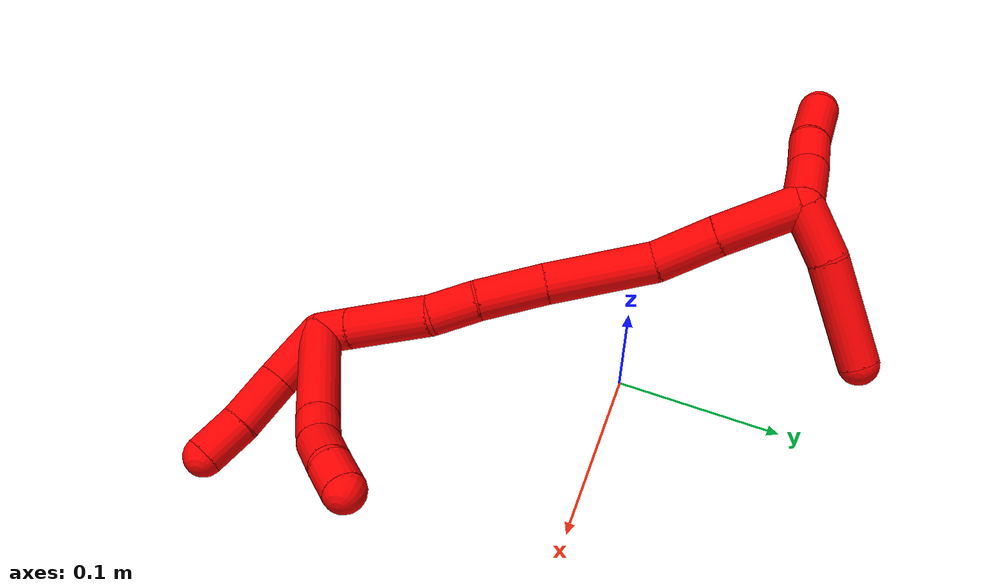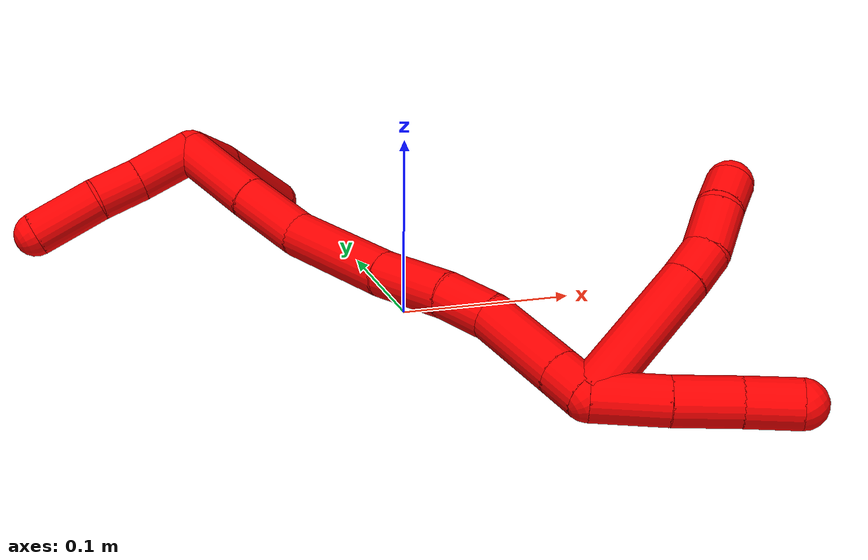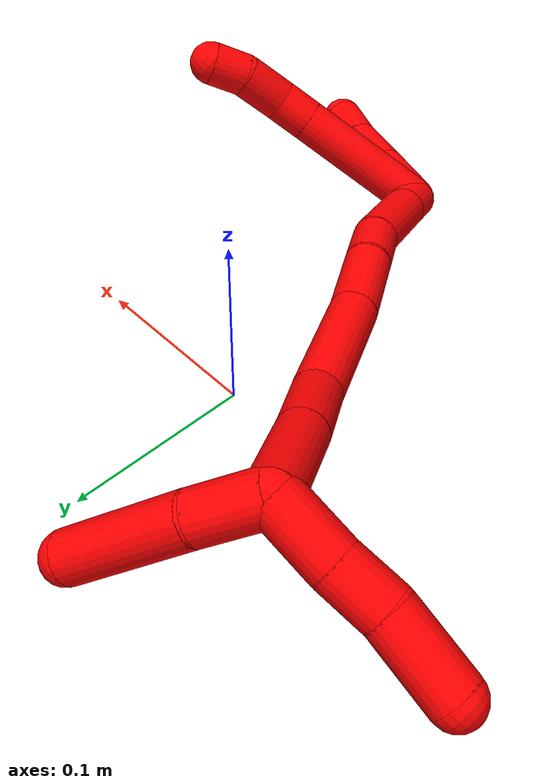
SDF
<sdf version="1.7">
 <world name="default">
  <model name="2">
   <static>0</static>
   <link name="2">
    <collision name="collision-cylinder-e_1_2_8">
     <pose>-0.010211 0.007007 0.038701 -0.179118 -0.254023 0.022934</pose>
     <geometry><cylinder><radius>0.0125</radius><length>0.081269</length></cylinder></geometry>
     <surface>
      <friction><ode><mu>1.16</mu><mu2>1.16</mu2><slip1>0</slip1><slip2>0</slip2></ode></friction>
      <contact><ode><kp>1e+06</kp><kd>1</kd><max_vel>0</max_vel><min_depth>0.001</min_depth></ode></contact>
     </surface>
    </collision>
    <visual name="visual-cylinder-e_1_2_8">
     <pose>-0.010211 0.007007 0.038701 -0.179118 -0.254023 0.022934</pose>
     <geometry><cylinder><radius>0.0125</radius><length>0.081269</length></cylinder></geometry>
     <material><ambient>1 0 0 1</ambient></material>
    </visual>
    <collision name="collision-cylinder-e_2_8_9">
     <pose>-0.023496 0.015931 0.087123 -0.19463 -0.30074 0.02958</pose>
     <geometry><cylinder><radius>0.0125</radius><length>0.020746</length></cylinder></geometry>
     <surface>
      <friction><ode><mu>1.16</mu><mu2>1.16</mu2><slip1>0</slip1><slip2>0</slip2></ode></friction>
      <contact><ode><kp>1e+06</kp><kd>1</kd><max_vel>0</max_vel><min_depth>0.001</min_depth></ode></contact>
     </surface>
    </collision>
    <visual name="visual-cylinder-e_2_8_9">
     <pose>-0.023496 0.015931 0.087123 -0.19463 -0.30074 0.02958</pose>
     <geometry><cylinder><radius>0.0125</radius><length>0.020746</length></cylinder></geometry>
     <material><ambient>1 0 0 1</ambient></material>
    </visual>
    <collision name="collision-cylinder-e_3_9_10">
     <pose>-0.033875 0.020971 0.107808 -0.277606 -0.569943 0.081804</pose>
     <geometry><cylinder><radius>0.0125</radius><length>0.027082</length></cylinder></geometry>
     <surface>
      <friction><ode><mu>1.16</mu><mu2>1.16</mu2><slip1>0</slip1><slip2>0</slip2></ode></friction>
      <contact><ode><kp>1e+06</kp><kd>1</kd><max_vel>0</max_vel><min_depth>0.001</min_depth></ode></contact>
     </surface>
    </collision>
    <visual name="visual-cylinder-e_3_9_10">
     <pose>-0.033875 0.020971 0.107808 -0.277606 -0.569943 0.081804</pose>
     <geometry><cylinder><radius>0.0125</radius><length>0.027082</length></cylinder></geometry>
     <material><ambient>1 0 0 1</ambient></material>
    </visual>
    <collision name="collision-cylinder-e_4_10_6">
     <pose>-0.045333 0.028934 0.127054 -0.528698 -0.408469 0.112012</pose>
     <geometry><cylinder><radius>0.0125</radius><length>0.020902</length></cylinder></geometry>
     <surface>
      <friction><ode><mu>1.16</mu><mu2>1.16</mu2><slip1>0</slip1><slip2>0</slip2></ode></friction>
      <contact><ode><kp>1e+06</kp><kd>1</kd><max_vel>0</max_vel><min_depth>0.001</min_depth></ode></contact>
     </surface>
    </collision>
    <visual name="visual-cylinder-e_4_10_6">
     <pose>-0.045333 0.028934 0.127054 -0.528698 -0.408469 0.112012</pose>
     <geometry><cylinder><radius>0.0125</radius><length>0.020902</length></cylinder></geometry>
     <material><ambient>1 0 0 1</ambient></material>
    </visual>
    <collision name="collision-cylinder-e_1_2_11">
     <pose>0.011241 -0.003033 0.015191 0.19705 0.627718 0.064146</pose>
     <geometry><cylinder><radius>0.0125</radius><length>0.038279</length></cylinder></geometry>
     <surface>
      <friction><ode><mu>1.16</mu><mu2>1.16</mu2><slip1>0</slip1><slip2>0</slip2></ode></friction>
      <contact><ode><kp>1e+06</kp><kd>1</kd><max_vel>0</max_vel><min_depth>0.001</min_depth></ode></contact>
     </surface>
    </collision>
    <visual name="visual-cylinder-e_1_2_11">
     <pose>0.011241 -0.003033 0.015191 0.19705 0.627718 0.064146</pose>
     <geometry><cylinder><radius>0.0125</radius><length>0.038279</length></cylinder></geometry>
     <material><ambient>1 0 0 1</ambient></material>
    </visual>
    <collision name="collision-cylinder-e_2_11_12">
     <pose>0.03178 -0.00846 0.04425 0.170962 0.583898 0.051495</pose>
     <geometry><cylinder><radius>0.0125</radius><length>0.033736</length></cylinder></geometry>
     <surface>
      <friction><ode><mu>1.16</mu><mu2>1.16</mu2><slip1>0</slip1><slip2>0</slip2></ode></friction>
      <contact><ode><kp>1e+06</kp><kd>1</kd><max_vel>0</max_vel><min_depth>0.001</min_depth></ode></contact>
     </surface>
    </collision>
    <visual name="visual-cylinder-e_2_11_12">
     <pose>0.03178 -0.00846 0.04425 0.170962 0.583898 0.051495</pose>
     <geometry><cylinder><radius>0.0125</radius><length>0.033736</length></cylinder></geometry>
     <material><ambient>1 0 0 1</ambient></material>
    </visual>
    <collision name="collision-cylinder-e_3_12_5">
     <pose>0.049031 -0.01435 0.069089 0.308505 0.604402 0.096871</pose>
     <geometry><cylinder><radius>0.0125</radius><length>0.027985</length></cylinder></geometry>
     <surface>
      <friction><ode><mu>1.16</mu><mu2>1.16</mu2><slip1>0</slip1><slip2>0</slip2></ode></friction>
      <contact><ode><kp>1e+06</kp><kd>1</kd><max_vel>0</max_vel><min_depth>0.001</min_depth></ode></contact>
     </surface>
    </collision>
    <visual name="visual-cylinder-e_3_12_5">
     <pose>0.049031 -0.01435 0.069089 0.308505 0.604402 0.096871</pose>
     <geometry><cylinder><radius>0.0125</radius><length>0.027985</length></cylinder></geometry>
     <material><ambient>1 0 0 1</ambient></material>
    </visual>
    <collision name="collision-cylinder-e_1_2_13">
     <pose>-0.00811 0.005865 -0.000915 -1.72556 -0.938977 1.06993</pose>
     <geometry><cylinder><radius>0.0125</radius><length>0.020099</length></cylinder></geometry>
     <surface>
      <friction><ode><mu>1.16</mu><mu2>1.16</mu2><slip1>0</slip1><slip2>0</slip2></ode></friction>
      <contact><ode><kp>1e+06</kp><kd>1</kd><max_vel>0</max_vel><min_depth>0.001</min_depth></ode></contact>
     </surface>
    </collision>
    <visual name="visual-cylinder-e_1_2_13">
     <pose>-0.00811 0.005865 -0.000915 -1.72556 -0.938977 1.06993</pose>
     <geometry><cylinder><radius>0.0125</radius><length>0.020099</length></cylinder></geometry>
     <material><ambient>1 0 0 1</ambient></material>
    </visual>
    <collision name="collision-cylinder-e_2_13_14">
     <pose>-0.036813 0.026699 -0.004241 -1.73046 -0.936111 1.07117</pose>
     <geometry><cylinder><radius>0.0125</radius><length>0.051148</length></cylinder></geometry>
     <surface>
      <friction><ode><mu>1.16</mu><mu2>1.16</mu2><slip1>0</slip1><slip2>0</slip2></ode></friction>
      <contact><ode><kp>1e+06</kp><kd>1</kd><max_vel>0</max_vel><min_depth>0.001</min_depth></ode></contact>
     </surface>
    </collision>
    <visual name="visual-cylinder-e_2_13_14">
     <pose>-0.036813 0.026699 -0.004241 -1.73046 -0.936111 1.07117</pose>
     <geometry><cylinder><radius>0.0125</radius><length>0.051148</length></cylinder></geometry>
     <material><ambient>1 0 0 1</ambient></material>
    </visual>
    <collision name="collision-cylinder-e_3_14_15">
     <pose>-0.068535 0.04959 -0.011306 -2.10212 -0.880703 1.3778</pose>
     <geometry><cylinder><radius>0.0125</radius><length>0.028862</length></cylinder></geometry>
     <surface>
      <friction><ode><mu>1.16</mu><mu2>1.16</mu2><slip1>0</slip1><slip2>0</slip2></ode></friction>
      <contact><ode><kp>1e+06</kp><kd>1</kd><max_vel>0</max_vel><min_depth>0.001</min_depth></ode></contact>
     </surface>
    </collision>
    <visual name="visual-cylinder-e_3_14_15">
     <pose>-0.068535 0.04959 -0.011306 -2.10212 -0.880703 1.3778</pose>
     <geometry><cylinder><radius>0.0125</radius><length>0.028862</length></cylinder></geometry>
     <material><ambient>1 0 0 1</ambient></material>
    </visual>
    <collision name="collision-cylinder-e_4_15_16">
     <pose>-0.093978 0.070754 -0.023628 -2.09556 -0.752009 1.20078</pose>
     <geometry><cylinder><radius>0.0125</radius><length>0.041907</length></cylinder></geometry>
     <surface>
      <friction><ode><mu>1.16</mu><mu2>1.16</mu2><slip1>0</slip1><slip2>0</slip2></ode></friction>
      <contact><ode><kp>1e+06</kp><kd>1</kd><max_vel>0</max_vel><min_depth>0.001</min_depth></ode></contact>
     </surface>
    </collision>
    <visual name="visual-cylinder-e_4_15_16">
     <pose>-0.093978 0.070754 -0.023628 -2.09556 -0.752009 1.20078</pose>
     <geometry><cylinder><radius>0.0125</radius><length>0.041907</length></cylinder></geometry>
     <material><ambient>1 0 0 1</ambient></material>
    </visual>
    <collision name="collision-cylinder-e_5_16_17">
     <pose>-0.132077 0.105125 -0.040507 -1.98198 -0.801147 1.14799</pose>
     <geometry><cylinder><radius>0.0125</radius><length>0.066242</length></cylinder></geometry>
     <surface>
      <friction><ode><mu>1.16</mu><mu2>1.16</mu2><slip1>0</slip1><slip2>0</slip2></ode></friction>
      <contact><ode><kp>1e+06</kp><kd>1</kd><max_vel>0</max_vel><min_depth>0.001</min_depth></ode></contact>
     </surface>
    </collision>
    <visual name="visual-cylinder-e_5_16_17">
     <pose>-0.132077 0.105125 -0.040507 -1.98198 -0.801147 1.14799</pose>
     <geometry><cylinder><radius>0.0125</radius><length>0.066242</length></cylinder></geometry>
     <material><ambient>1 0 0 1</ambient></material>
    </visual>
    <collision name="collision-cylinder-e_6_17_18">
     <pose>-0.17339 0.134585 -0.054449 -2.08711 -1.07051 1.58914</pose>
     <geometry><cylinder><radius>0.0125</radius><length>0.03995</length></cylinder></geometry>
     <surface>
      <friction><ode><mu>1.16</mu><mu2>1.16</mu2><slip1>0</slip1><slip2>0</slip2></ode></friction>
      <contact><ode><kp>1e+06</kp><kd>1</kd><max_vel>0</max_vel><min_depth>0.001</min_depth></ode></contact>
     </surface>
    </collision>
    <visual name="visual-cylinder-e_6_17_18">
     <pose>-0.17339 0.134585 -0.054449 -2.08711 -1.07051 1.58914</pose>
     <geometry><cylinder><radius>0.0125</radius><length>0.03995</length></cylinder></geometry>
     <material><ambient>1 0 0 1</ambient></material>
    </visual>
    <collision name="collision-cylinder-e_7_18_1">
     <pose>-0.213531 0.15446 -0.064277 -1.98665 -1.06187 1.46694</pose>
     <geometry><cylinder><radius>0.0125</radius><length>0.051792</length></cylinder></geometry>
     <surface>
      <friction><ode><mu>1.16</mu><mu2>1.16</mu2><slip1>0</slip1><slip2>0</slip2></ode></friction>
      <contact><ode><kp>1e+06</kp><kd>1</kd><max_vel>0</max_vel><min_depth>0.001</min_depth></ode></contact>
     </surface>
    </collision>
    <visual name="visual-cylinder-e_7_18_1">
     <pose>-0.213531 0.15446 -0.064277 -1.98665 -1.06187 1.46694</pose>
     <geometry><cylinder><radius>0.0125</radius><length>0.051792</length></cylinder></geometry>
     <material><ambient>1 0 0 1</ambient></material>
    </visual>
    <collision name="collision-cylinder-e_1_1_19">
     <pose>-0.236685 0.166477 -0.086709 -3.11416 -0.031092 1.69578</pose>
     <geometry><cylinder><radius>0.0125</radius><length>0.0347</length></cylinder></geometry>
     <surface>
      <friction><ode><mu>1.16</mu><mu2>1.16</mu2><slip1>0</slip1><slip2>0</slip2></ode></friction>
      <contact><ode><kp>1e+06</kp><kd>1</kd><max_vel>0</max_vel><min_depth>0.001</min_depth></ode></contact>
     </surface>
    </collision>
    <visual name="visual-cylinder-e_1_1_19">
     <pose>-0.236685 0.166477 -0.086709 -3.11416 -0.031092 1.69578</pose>
     <geometry><cylinder><radius>0.0125</radius><length>0.0347</length></cylinder></geometry>
     <material><ambient>1 0 0 1</ambient></material>
    </visual>
    <collision name="collision-cylinder-e_2_19_20">
     <pose>-0.238041 0.166026 -0.116963 3.06994 -0.062995 -1.44222</pose>
     <geometry><cylinder><radius>0.0125</radius><length>0.025955</length></cylinder></geometry>
     <surface>
      <friction><ode><mu>1.16</mu><mu2>1.16</mu2><slip1>0</slip1><slip2>0</slip2></ode></friction>
      <contact><ode><kp>1e+06</kp><kd>1</kd><max_vel>0</max_vel><min_depth>0.001</min_depth></ode></contact>
     </surface>
    </collision>
    <visual name="visual-cylinder-e_2_19_20">
     <pose>-0.238041 0.166026 -0.116963 3.06994 -0.062995 -1.44222</pose>
     <geometry><cylinder><radius>0.0125</radius><length>0.025955</length></cylinder></geometry>
     <material><ambient>1 0 0 1</ambient></material>
    </visual>
    <collision name="collision-cylinder-e_3_20_4">
     <pose>-0.239428 0.1672 -0.149433 -3.03451 -0.028946 0.527565</pose>
     <geometry><cylinder><radius>0.0125</radius><length>0.039345</length></cylinder></geometry>
     <surface>
      <friction><ode><mu>1.16</mu><mu2>1.16</mu2><slip1>0</slip1><slip2>0</slip2></ode></friction>
      <contact><ode><kp>1e+06</kp><kd>1</kd><max_vel>0</max_vel><min_depth>0.001</min_depth></ode></contact>
     </surface>
    </collision>
    <visual name="visual-cylinder-e_3_20_4">
     <pose>-0.239428 0.1672 -0.149433 -3.03451 -0.028946 0.527565</pose>
     <geometry><cylinder><radius>0.0125</radius><length>0.039345</length></cylinder></geometry>
     <material><ambient>1 0 0 1</ambient></material>
    </visual>
    <collision name="collision-cylinder-e_1_1_21">
     <pose>-0.231762 0.180939 -0.061259 -1.07314 0.25235 -0.150608</pose>
     <geometry><cylinder><radius>0.0125</radius><length>0.035111</length></cylinder></geometry>
     <surface>
      <friction><ode><mu>1.16</mu><mu2>1.16</mu2><slip1>0</slip1><slip2>0</slip2></ode></friction>
      <contact><ode><kp>1e+06</kp><kd>1</kd><max_vel>0</max_vel><min_depth>0.001</min_depth></ode></contact>
     </surface>
    </collision>
    <visual name="visual-cylinder-e_1_1_21">
     <pose>-0.231762 0.180939 -0.061259 -1.07314 0.25235 -0.150608</pose>
     <geometry><cylinder><radius>0.0125</radius><length>0.035111</length></cylinder></geometry>
     <material><ambient>1 0 0 1</ambient></material>
    </visual>
    <collision name="collision-cylinder-e_2_21_3">
     <pose>-0.214194 0.222387 -0.039878 -1.10682 0.418514 -0.260911</pose>
     <geometry><cylinder><radius>0.0125</radius><length>0.064889</length></cylinder></geometry>
     <surface>
      <friction><ode><mu>1.16</mu><mu2>1.16</mu2><slip1>0</slip1><slip2>0</slip2></ode></friction>
      <contact><ode><kp>1e+06</kp><kd>1</kd><max_vel>0</max_vel><min_depth>0.001</min_depth></ode></contact>
     </surface>
    </collision>
    <visual name="visual-cylinder-e_2_21_3">
     <pose>-0.214194 0.222387 -0.039878 -1.10682 0.418514 -0.260911</pose>
     <geometry><cylinder><radius>0.0125</radius><length>0.064889</length></cylinder></geometry>
     <material><ambient>1 0 0 1</ambient></material>
    </visual>
    <collision name="collision-sphere-3">
     <pose>-0.201008 0.248897 -0.026612 0 -0 0</pose>
     <geometry><sphere><radius>0.0125</radius></sphere></geometry>
     <surface>
      <friction><ode><mu>1.16</mu><mu2>1.16</mu2><slip1>0</slip1><slip2>0</slip2></ode></friction>
      <contact><ode><kp>1e+06</kp><kd>1</kd><max_vel>0</max_vel><min_depth>0.001</min_depth></ode></contact>
     </surface>
    </collision>
    <visual name="visual-sphere-3">
     <pose>-0.201008 0.248897 -0.026612 0 -0 0</pose>
     <geometry><sphere><radius>0.0125</radius></sphere></geometry>
     <material><ambient>1 0 0 1</ambient></material>
    </visual>
    <collision name="collision-sphere-21">
     <pose>-0.227379 0.195877 -0.053144 0 -0 0</pose>
     <geometry><sphere><radius>0.0125</radius></sphere></geometry>
     <surface>
      <friction><ode><mu>1.16</mu><mu2>1.16</mu2><slip1>0</slip1><slip2>0</slip2></ode></friction>
      <contact><ode><kp>1e+06</kp><kd>1</kd><max_vel>0</max_vel><min_depth>0.001</min_depth></ode></contact>
     </surface>
    </collision>
    <visual name="visual-sphere-21">
     <pose>-0.227379 0.195877 -0.053144 0 -0 0</pose>
     <geometry><sphere><radius>0.0125</radius></sphere></geometry>
     <material><ambient>1 0 0 1</ambient></material>
    </visual>
    <collision name="collision-sphere-4">
     <pose>-0.239997 0.169302 -0.168984 0 -0 0</pose>
     <geometry><sphere><radius>0.0125</radius></sphere></geometry>
     <surface>
      <friction><ode><mu>1.16</mu><mu2>1.16</mu2><slip1>0</slip1><slip2>0</slip2></ode></friction>
      <contact><ode><kp>1e+06</kp><kd>1</kd><max_vel>0</max_vel><min_depth>0.001</min_depth></ode></contact>
     </surface>
    </collision>
    <visual name="visual-sphere-4">
     <pose>-0.239997 0.169302 -0.168984 0 -0 0</pose>
     <geometry><sphere><radius>0.0125</radius></sphere></geometry>
     <material><ambient>1 0 0 1</ambient></material>
    </visual>
    <collision name="collision-sphere-20">
     <pose>-0.238858 0.165099 -0.129881 0 -0 0</pose>
     <geometry><sphere><radius>0.0125</radius></sphere></geometry>
     <surface>
      <friction><ode><mu>1.16</mu><mu2>1.16</mu2><slip1>0</slip1><slip2>0</slip2></ode></friction>
      <contact><ode><kp>1e+06</kp><kd>1</kd><max_vel>0</max_vel><min_depth>0.001</min_depth></ode></contact>
     </surface>
    </collision>
    <visual name="visual-sphere-20">
     <pose>-0.238858 0.165099 -0.129881 0 -0 0</pose>
     <geometry><sphere><radius>0.0125</radius></sphere></geometry>
     <material><ambient>1 0 0 1</ambient></material>
    </visual>
    <collision name="collision-sphere-11">
     <pose>0.022481 -0.006066 0.030382 0 -0 0</pose>
     <geometry><sphere><radius>0.0125</radius></sphere></geometry>
     <surface>
      <friction><ode><mu>1.16</mu><mu2>1.16</mu2><slip1>0</slip1><slip2>0</slip2></ode></friction>
      <contact><ode><kp>1e+06</kp><kd>1</kd><max_vel>0</max_vel><min_depth>0.001</min_depth></ode></contact>
     </surface>
    </collision>
    <visual name="visual-sphere-11">
     <pose>0.022481 -0.006066 0.030382 0 -0 0</pose>
     <geometry><sphere><radius>0.0125</radius></sphere></geometry>
     <material><ambient>1 0 0 1</ambient></material>
    </visual>
    <collision name="collision-sphere-6">
     <pose>-0.049484 0.033772 0.135336 0 -0 0</pose>
     <geometry><sphere><radius>0.0125</radius></sphere></geometry>
     <surface>
      <friction><ode><mu>1.16</mu><mu2>1.16</mu2><slip1>0</slip1><slip2>0</slip2></ode></friction>
      <contact><ode><kp>1e+06</kp><kd>1</kd><max_vel>0</max_vel><min_depth>0.001</min_depth></ode></contact>
     </surface>
    </collision>
    <visual name="visual-sphere-6">
     <pose>-0.049484 0.033772 0.135336 0 -0 0</pose>
     <geometry><sphere><radius>0.0125</radius></sphere></geometry>
     <material><ambient>1 0 0 1</ambient></material>
    </visual>
    <collision name="collision-sphere-10">
     <pose>-0.041182 0.024096 0.118772 0 -0 0</pose>
     <geometry><sphere><radius>0.0125</radius></sphere></geometry>
     <surface>
      <friction><ode><mu>1.16</mu><mu2>1.16</mu2><slip1>0</slip1><slip2>0</slip2></ode></friction>
      <contact><ode><kp>1e+06</kp><kd>1</kd><max_vel>0</max_vel><min_depth>0.001</min_depth></ode></contact>
     </surface>
    </collision>
    <visual name="visual-sphere-10">
     <pose>-0.041182 0.024096 0.118772 0 -0 0</pose>
     <geometry><sphere><radius>0.0125</radius></sphere></geometry>
     <material><ambient>1 0 0 1</ambient></material>
    </visual>
    <collision name="collision-sphere-9">
     <pose>-0.026569 0.017847 0.096844 0 -0 0</pose>
     <geometry><sphere><radius>0.0125</radius></sphere></geometry>
     <surface>
      <friction><ode><mu>1.16</mu><mu2>1.16</mu2><slip1>0</slip1><slip2>0</slip2></ode></friction>
      <contact><ode><kp>1e+06</kp><kd>1</kd><max_vel>0</max_vel><min_depth>0.001</min_depth></ode></contact>
     </surface>
    </collision>
    <visual name="visual-sphere-9">
     <pose>-0.026569 0.017847 0.096844 0 -0 0</pose>
     <geometry><sphere><radius>0.0125</radius></sphere></geometry>
     <material><ambient>1 0 0 1</ambient></material>
    </visual>
    <collision name="collision-sphere-2">
     <geometry><sphere><radius>0.0125</radius></sphere></geometry>
     <surface>
      <friction><ode><mu>1.16</mu><mu2>1.16</mu2><slip1>0</slip1><slip2>0</slip2></ode></friction>
      <contact><ode><kp>1e+06</kp><kd>1</kd><max_vel>0</max_vel><min_depth>0.001</min_depth></ode></contact>
     </surface>
    </collision>
    <visual name="visual-sphere-2">
     <geometry><sphere><radius>0.0125</radius></sphere></geometry>
     <material><ambient>1 0 0 1</ambient></material>
    </visual>
    <collision name="collision-sphere-19">
     <pose>-0.237224 0.166953 -0.104044 0 -0 0</pose>
     <geometry><sphere><radius>0.0125</radius></sphere></geometry>
     <surface>
      <friction><ode><mu>1.16</mu><mu2>1.16</mu2><slip1>0</slip1><slip2>0</slip2></ode></friction>
      <contact><ode><kp>1e+06</kp><kd>1</kd><max_vel>0</max_vel><min_depth>0.001</min_depth></ode></contact>
     </surface>
    </collision>
    <visual name="visual-sphere-19">
     <pose>-0.237224 0.166953 -0.104044 0 -0 0</pose>
     <geometry><sphere><radius>0.0125</radius></sphere></geometry>
     <material><ambient>1 0 0 1</ambient></material>
    </visual>
    <collision name="collision-sphere-8">
     <pose>-0.020423 0.014014 0.077402 0 -0 0</pose>
     <geometry><sphere><radius>0.0125</radius></sphere></geometry>
     <surface>
      <friction><ode><mu>1.16</mu><mu2>1.16</mu2><slip1>0</slip1><slip2>0</slip2></ode></friction>
      <contact><ode><kp>1e+06</kp><kd>1</kd><max_vel>0</max_vel><min_depth>0.001</min_depth></ode></contact>
     </surface>
    </collision>
    <visual name="visual-sphere-8">
     <pose>-0.020423 0.014014 0.077402 0 -0 0</pose>
     <geometry><sphere><radius>0.0125</radius></sphere></geometry>
     <material><ambient>1 0 0 1</ambient></material>
    </visual>
    <collision name="collision-sphere-12">
     <pose>0.041079 -0.010854 0.058118 0 -0 0</pose>
     <geometry><sphere><radius>0.0125</radius></sphere></geometry>
     <surface>
      <friction><ode><mu>1.16</mu><mu2>1.16</mu2><slip1>0</slip1><slip2>0</slip2></ode></friction>
      <contact><ode><kp>1e+06</kp><kd>1</kd><max_vel>0</max_vel><min_depth>0.001</min_depth></ode></contact>
     </surface>
    </collision>
    <visual name="visual-sphere-12">
     <pose>0.041079 -0.010854 0.058118 0 -0 0</pose>
     <geometry><sphere><radius>0.0125</radius></sphere></geometry>
     <material><ambient>1 0 0 1</ambient></material>
    </visual>
    <collision name="collision-sphere-5">
     <pose>0.056982 -0.017846 0.080059 0 -0 0</pose>
     <geometry><sphere><radius>0.0125</radius></sphere></geometry>
     <surface>
      <friction><ode><mu>1.16</mu><mu2>1.16</mu2><slip1>0</slip1><slip2>0</slip2></ode></friction>
      <contact><ode><kp>1e+06</kp><kd>1</kd><max_vel>0</max_vel><min_depth>0.001</min_depth></ode></contact>
     </surface>
    </collision>
    <visual name="visual-sphere-5">
     <pose>0.056982 -0.017846 0.080059 0 -0 0</pose>
     <geometry><sphere><radius>0.0125</radius></sphere></geometry>
     <material><ambient>1 0 0 1</ambient></material>
    </visual>
    <collision name="collision-sphere-13">
     <pose>-0.016219 0.011729 -0.00183 0 -0 0</pose>
     <geometry><sphere><radius>0.0125</radius></sphere></geometry>
     <surface>
      <friction><ode><mu>1.16</mu><mu2>1.16</mu2><slip1>0</slip1><slip2>0</slip2></ode></friction>
      <contact><ode><kp>1e+06</kp><kd>1</kd><max_vel>0</max_vel><min_depth>0.001</min_depth></ode></contact>
     </surface>
    </collision>
    <visual name="visual-sphere-13">
     <pose>-0.016219 0.011729 -0.00183 0 -0 0</pose>
     <geometry><sphere><radius>0.0125</radius></sphere></geometry>
     <material><ambient>1 0 0 1</ambient></material>
    </visual>
    <collision name="collision-sphere-14">
     <pose>-0.057406 0.04167 -0.006651 0 -0 0</pose>
     <geometry><sphere><radius>0.0125</radius></sphere></geometry>
     <surface>
      <friction><ode><mu>1.16</mu><mu2>1.16</mu2><slip1>0</slip1><slip2>0</slip2></ode></friction>
      <contact><ode><kp>1e+06</kp><kd>1</kd><max_vel>0</max_vel><min_depth>0.001</min_depth></ode></contact>
     </surface>
    </collision>
    <visual name="visual-sphere-14">
     <pose>-0.057406 0.04167 -0.006651 0 -0 0</pose>
     <geometry><sphere><radius>0.0125</radius></sphere></geometry>
     <material><ambient>1 0 0 1</ambient></material>
    </visual>
    <collision name="collision-sphere-15">
     <pose>-0.079664 0.057511 -0.015961 0 -0 0</pose>
     <geometry><sphere><radius>0.0125</radius></sphere></geometry>
     <surface>
      <friction><ode><mu>1.16</mu><mu2>1.16</mu2><slip1>0</slip1><slip2>0</slip2></ode></friction>
      <contact><ode><kp>1e+06</kp><kd>1</kd><max_vel>0</max_vel><min_depth>0.001</min_depth></ode></contact>
     </surface>
    </collision>
    <visual name="visual-sphere-15">
     <pose>-0.079664 0.057511 -0.015961 0 -0 0</pose>
     <geometry><sphere><radius>0.0125</radius></sphere></geometry>
     <material><ambient>1 0 0 1</ambient></material>
    </visual>
    <collision name="collision-sphere-16">
     <pose>-0.108291 0.083998 -0.031295 0 -0 0</pose>
     <geometry><sphere><radius>0.0125</radius></sphere></geometry>
     <surface>
      <friction><ode><mu>1.16</mu><mu2>1.16</mu2><slip1>0</slip1><slip2>0</slip2></ode></friction>
      <contact><ode><kp>1e+06</kp><kd>1</kd><max_vel>0</max_vel><min_depth>0.001</min_depth></ode></contact>
     </surface>
    </collision>
    <visual name="visual-sphere-16">
     <pose>-0.108291 0.083998 -0.031295 0 -0 0</pose>
     <geometry><sphere><radius>0.0125</radius></sphere></geometry>
     <material><ambient>1 0 0 1</ambient></material>
    </visual>
    <collision name="collision-sphere-17">
     <pose>-0.155863 0.126253 -0.049719 0 -0 0</pose>
     <geometry><sphere><radius>0.0125</radius></sphere></geometry>
     <surface>
      <friction><ode><mu>1.16</mu><mu2>1.16</mu2><slip1>0</slip1><slip2>0</slip2></ode></friction>
      <contact><ode><kp>1e+06</kp><kd>1</kd><max_vel>0</max_vel><min_depth>0.001</min_depth></ode></contact>
     </surface>
    </collision>
    <visual name="visual-sphere-17">
     <pose>-0.155863 0.126253 -0.049719 0 -0 0</pose>
     <geometry><sphere><radius>0.0125</radius></sphere></geometry>
     <material><ambient>1 0 0 1</ambient></material>
    </visual>
    <collision name="collision-sphere-18">
     <pose>-0.190917 0.142918 -0.05918 0 -0 0</pose>
     <geometry><sphere><radius>0.0125</radius></sphere></geometry>
     <surface>
      <friction><ode><mu>1.16</mu><mu2>1.16</mu2><slip1>0</slip1><slip2>0</slip2></ode></friction>
      <contact><ode><kp>1e+06</kp><kd>1</kd><max_vel>0</max_vel><min_depth>0.001</min_depth></ode></contact>
     </surface>
    </collision>
    <visual name="visual-sphere-18">
     <pose>-0.190917 0.142918 -0.05918 0 -0 0</pose>
     <geometry><sphere><radius>0.0125</radius></sphere></geometry>
     <material><ambient>1 0 0 1</ambient></material>
    </visual>
    <collision name="collision-sphere-1">
     <pose>-0.236146 0.166002 -0.069374 0 -0 0</pose>
     <geometry><sphere><radius>0.0125</radius></sphere></geometry>
     <surface>
      <friction><ode><mu>1.16</mu><mu2>1.16</mu2><slip1>0</slip1><slip2>0</slip2></ode></friction>
      <contact><ode><kp>1e+06</kp><kd>1</kd><max_vel>0</max_vel><min_depth>0.001</min_depth></ode></contact>
     </surface>
    </collision>
    <visual name="visual-sphere-1">
     <pose>-0.236146 0.166002 -0.069374 0 -0 0</pose>
     <geometry><sphere><radius>0.0125</radius></sphere></geometry>
     <material><ambient>1 0 0 1</ambient></material>
    </visual>
    <inertial>
     <pose>-0.107804 0.086583 -0.015821 0 -0 0</pose>
     <mass>0.75</mass>
     <inertia>
      <ixx>0.000138</ixx>
      <ixy>0</ixy>
      <ixz>0</ixz>
      <iyy>0.000181</iyy>
      <iyz>0</iyz>
      <izz>-1.5e-05</izz>
     </inertia>
    </inertial>
   </link>
   <pose>0.035363 -0.179552 0.015676 -0.875198 0.866341 -0.871281</pose>
  </model>
 </world>
</sdf>
